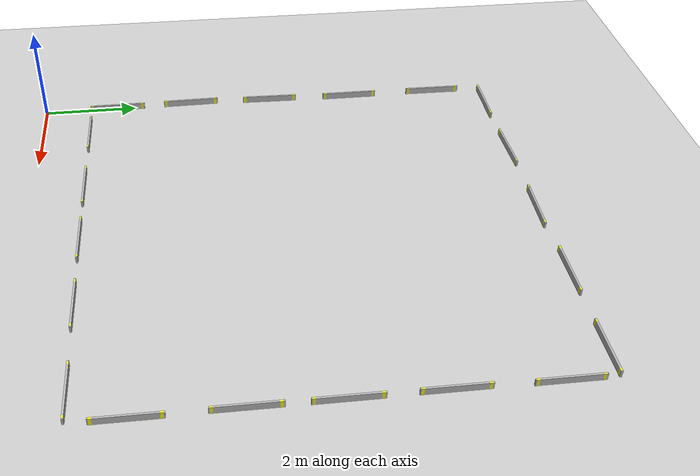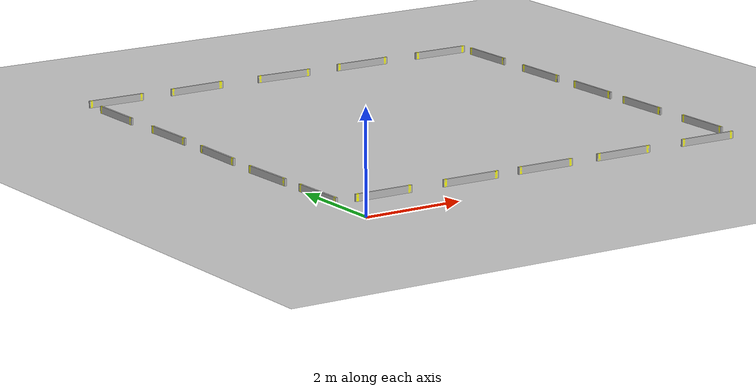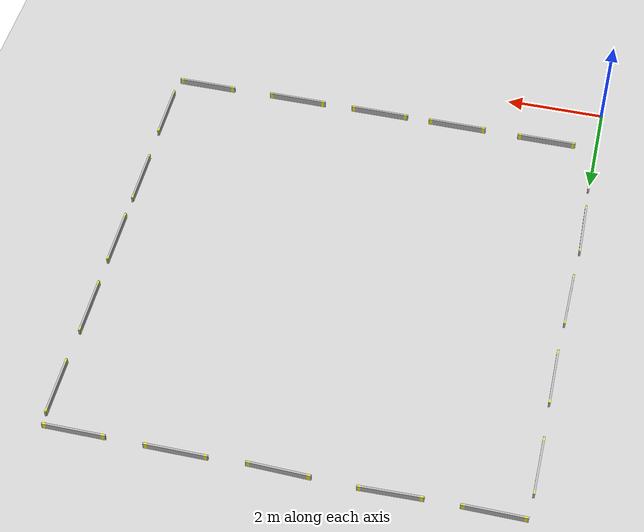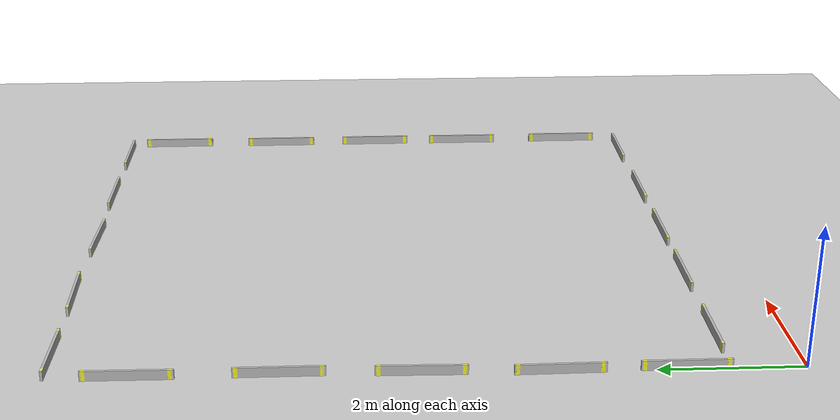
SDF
<sdf version="1.6">
 <world name="default">
  <model name="ground_concrete">
   <static>1</static>
   <link name="link">
    <collision name="collision">
     <geometry><plane><normal>0 0 1</normal><size>100 100</size></plane></geometry>
     <surface><friction><ode><mu>100</mu><mu2>50</mu2></ode></friction></surface>
    </collision>
    <visual name="visual">
     <cast_shadows>0</cast_shadows>
     <geometry><plane><normal>0 0 1</normal><size>100 100</size></plane></geometry>
     <material>
      <script>
       <uri>model://ground_concrete/materials/scripts</uri>
       <uri>model://ground_concrete/materials/textures/</uri>
       <name>MyGroundPlane/Image</name>
      </script>
     </material>
    </visual>
   </link>
   <pose>-0.004927 0.020491 0 0 -0 0</pose>
  </model>
  <light name="sun" type="directional">
   <cast_shadows>0</cast_shadows>
   <pose>0 0 10 0 -0 0</pose>
   <diffuse>0.8 0.8 0.8 1</diffuse>
   <specular>0.2 0.2 0.2 1</specular>
   <attenuation>
    <range>1000</range>
    <constant>0.9</constant>
    <linear>0.01</linear>
    <quadratic>0.001</quadratic>
   </attenuation>
   <direction>-0.5 0.1 -0.9</direction>
  </light>
  <plugin name="ros_interface_plugin" filename="librotors_gazebo_ros_interface_plugin.so"/>
  <spherical_coordinates>
   <surface_model>EARTH_WGS84</surface_model>
   <latitude_deg>47.3667</latitude_deg>
   <longitude_deg>8.55</longitude_deg>
   <elevation>500</elevation>
   <heading_deg>0</heading_deg>
  </spherical_coordinates>
  <physics name="default_physics" default="0" type="ode">
   <ode>
    <solver>
     <type>quick</type>
     <iters>1000</iters>
     <sor>1.3</sor>
     <use_dynamic_moi_rescaling>0</use_dynamic_moi_rescaling>
    </solver>
    <constraints>
     <cfm>0</cfm>
     <erp>0.2</erp>
     <contact_max_correcting_vel>100</contact_max_correcting_vel>
     <contact_surface_layer>0.001</contact_surface_layer>
    </constraints>
   </ode>
   <max_step_size>0.01</max_step_size>
   <real_time_factor>1</real_time_factor>
   <real_time_update_rate>100</real_time_update_rate>
  </physics>
  <gravity>0 0 -9.8</gravity>
  <magnetic_field>6e-06 2.3e-05 -4.2e-05</magnetic_field>
  <atmosphere type="adiabatic"/>
  <scene><ambient>0 0 0 1</ambient><background>0.7 0.7 0.7 1</background><shadows>0</shadows></scene>
  <audio><device>default</device></audio>
  <light name="user_directional_light_1" type="directional">
   <pose>-3.34267 -3.00126 1 0 -0 0</pose>
   <diffuse>0.5 0.5 0.5 1</diffuse>
   <specular>0.1 0.1 0.1 1</specular>
   <direction>0.1 0.1 -0.9</direction>
   <attenuation>
    <range>20</range>
    <constant>0.5</constant>
    <linear>0.01</linear>
    <quadratic>0.001</quadratic>
   </attenuation>
   <cast_shadows>0</cast_shadows>
  </light>
  <model name="lumber_2x6x48">
   <link name="link">
    <inertial>
     <mass>2.22</mass>
     <inertia><ixx>0.0039</ixx><ixy>0</ixy><ixz>0</ixz><iyy>0.28</iyy><iyz>0</iyz><izz>0.2766</izz></inertia>
    </inertial>
    <collision name="collision">
     <geometry><box><size>1.2192 0.038 0.1396</size></box></geometry>
     <surface>
      <bounce><restitution_coefficient>0.01</restitution_coefficient><threshold>5</threshold></bounce>
      <friction><ode><mu>5</mu><mu2>5</mu2></ode></friction>
      <contact><ode><soft_cfm>0.01</soft_cfm><kp>10000</kp><kd>1000</kd><min_depth>0.001</min_depth></ode></contact>
     </surface>
    </collision>
    <visual name="visual">
     <geometry><mesh><uri>model://drc_practice_2x6/meshes/2x6x48.dae</uri></mesh></geometry>
    </visual>
   </link>
   <pose>0.667532 9.96837 0.068256 -0 -0 -0.00625</pose>
  </model>
  <model name="lumber_2x6x48_1">
   <link name="link">
    <inertial>
     <mass>2.22</mass>
     <inertia><ixx>0.0039</ixx><ixy>0</ixy><ixz>0</ixz><iyy>0.28</iyy><iyz>0</iyz><izz>0.2766</izz></inertia>
    </inertial>
    <collision name="collision">
     <geometry><box><size>1.2192 0.038 0.1396</size></box></geometry>
     <surface>
      <bounce><restitution_coefficient>0.01</restitution_coefficient><threshold>5</threshold></bounce>
      <friction><ode><mu>5</mu><mu2>5</mu2></ode></friction>
      <contact><ode><soft_cfm>0.01</soft_cfm><kp>10000</kp><kd>1000</kd><min_depth>0.001</min_depth></ode></contact>
     </surface>
    </collision>
    <visual name="visual">
     <geometry><mesh><uri>model://drc_practice_2x6/meshes/2x6x48.dae</uri></mesh></geometry>
    </visual>
   </link>
   <pose>2.52595 9.98912 0.068256 0 -0 0.028538</pose>
  </model>
  <model name="lumber_2x6x48_3">
   <link name="link">
    <inertial>
     <mass>2.22</mass>
     <inertia><ixx>0.0039</ixx><ixy>0</ixy><ixz>0</ixz><iyy>0.28</iyy><iyz>0</iyz><izz>0.2766</izz></inertia>
    </inertial>
    <collision name="collision">
     <geometry><box><size>1.2192 0.038 0.1396</size></box></geometry>
     <surface>
      <bounce><restitution_coefficient>0.01</restitution_coefficient><threshold>5</threshold></bounce>
      <friction><ode><mu>5</mu><mu2>5</mu2></ode></friction>
      <contact><ode><soft_cfm>0.01</soft_cfm><kp>10000</kp><kd>1000</kd><min_depth>0.001</min_depth></ode></contact>
     </surface>
    </collision>
    <visual name="visual">
     <geometry><mesh><uri>model://drc_practice_2x6/meshes/2x6x48.dae</uri></mesh></geometry>
    </visual>
   </link>
   <pose>4.56837 9.97197 0.068256 0 -0 -0.02724</pose>
  </model>
  <model name="lumber_2x6x48_5">
   <link name="link">
    <inertial>
     <mass>2.22</mass>
     <inertia><ixx>0.0039</ixx><ixy>0</ixy><ixz>0</ixz><iyy>0.28</iyy><iyz>0</iyz><izz>0.2766</izz></inertia>
    </inertial>
    <collision name="collision">
     <geometry><box><size>1.2192 0.038 0.1396</size></box></geometry>
     <surface>
      <bounce><restitution_coefficient>0.01</restitution_coefficient><threshold>5</threshold></bounce>
      <friction><ode><mu>5</mu><mu2>5</mu2></ode></friction>
      <contact><ode><soft_cfm>0.01</soft_cfm><kp>10000</kp><kd>1000</kd><min_depth>0.001</min_depth></ode></contact>
     </surface>
    </collision>
    <visual name="visual">
     <geometry><mesh><uri>model://drc_practice_2x6/meshes/2x6x48.dae</uri></mesh></geometry>
    </visual>
   </link>
   <pose>6.4695 9.99841 0.068256 0 -0 3e-05</pose>
  </model>
  <model name="lumber_2x6x48_6">
   <link name="link">
    <inertial>
     <mass>2.22</mass>
     <inertia><ixx>0.0039</ixx><ixy>0</ixy><ixz>0</ixz><iyy>0.28</iyy><iyz>0</iyz><izz>0.2766</izz></inertia>
    </inertial>
    <collision name="collision">
     <geometry><box><size>1.2192 0.038 0.1396</size></box></geometry>
     <surface>
      <bounce><restitution_coefficient>0.01</restitution_coefficient><threshold>5</threshold></bounce>
      <friction><ode><mu>5</mu><mu2>5</mu2></ode></friction>
      <contact><ode><soft_cfm>0.01</soft_cfm><kp>10000</kp><kd>1000</kd><min_depth>0.001</min_depth></ode></contact>
     </surface>
    </collision>
    <visual name="visual">
     <geometry><mesh><uri>model://drc_practice_2x6/meshes/2x6x48.dae</uri></mesh></geometry>
    </visual>
   </link>
   <pose>8.39539 9.9939 0.068256 0 -0 0</pose>
  </model>
  <model name="lumber_2x6x48_clone">
   <link name="link">
    <inertial>
     <mass>2.22</mass>
     <inertia><ixx>0.0039</ixx><ixy>0</ixy><ixz>0</ixz><iyy>0.28</iyy><iyz>0</iyz><izz>0.2766</izz></inertia>
    </inertial>
    <collision name="collision">
     <geometry><box><size>1.2192 0.038 0.1396</size></box></geometry>
     <surface>
      <bounce><restitution_coefficient>0.01</restitution_coefficient><threshold>5</threshold></bounce>
      <friction><ode><mu>5</mu><mu2>5</mu2></ode></friction>
      <contact><ode><soft_cfm>0.01</soft_cfm><kp>10000</kp><kd>1000</kd><min_depth>0.001</min_depth></ode></contact>
     </surface>
    </collision>
    <visual name="visual">
     <geometry><mesh><uri>model://drc_practice_2x6/meshes/2x6x48.dae</uri></mesh></geometry>
    </visual>
   </link>
   <pose>0.043867 8.87852 0.068256 0 -0 1.56439</pose>
  </model>
  <model name="lumber_2x6x48_clone_0">
   <link name="link">
    <inertial>
     <mass>2.22</mass>
     <inertia><ixx>0.0039</ixx><ixy>0</ixy><ixz>0</ixz><iyy>0.28</iyy><iyz>0</iyz><izz>0.2766</izz></inertia>
    </inertial>
    <collision name="collision">
     <geometry><box><size>1.2192 0.038 0.1396</size></box></geometry>
     <surface>
      <bounce><restitution_coefficient>0.01</restitution_coefficient><threshold>5</threshold></bounce>
      <friction><ode><mu>5</mu><mu2>5</mu2></ode></friction>
      <contact><ode><soft_cfm>0.01</soft_cfm><kp>10000</kp><kd>1000</kd><min_depth>0.001</min_depth></ode></contact>
     </surface>
    </collision>
    <visual name="visual">
     <geometry><mesh><uri>model://drc_practice_2x6/meshes/2x6x48.dae</uri></mesh></geometry>
    </visual>
   </link>
   <pose>0.054395 6.92134 0.068256 0 0 -1.56604</pose>
  </model>
  <model name="lumber_2x6x48_clone_1">
   <link name="link">
    <inertial>
     <mass>2.22</mass>
     <inertia><ixx>0.0039</ixx><ixy>0</ixy><ixz>0</ixz><iyy>0.28</iyy><iyz>0</iyz><izz>0.2766</izz></inertia>
    </inertial>
    <collision name="collision">
     <geometry><box><size>1.2192 0.038 0.1396</size></box></geometry>
     <surface>
      <bounce><restitution_coefficient>0.01</restitution_coefficient><threshold>5</threshold></bounce>
      <friction><ode><mu>5</mu><mu2>5</mu2></ode></friction>
      <contact><ode><soft_cfm>0.01</soft_cfm><kp>10000</kp><kd>1000</kd><min_depth>0.001</min_depth></ode></contact>
     </surface>
    </collision>
    <visual name="visual">
     <geometry><mesh><uri>model://drc_practice_2x6/meshes/2x6x48.dae</uri></mesh></geometry>
    </visual>
   </link>
   <pose>0.017219 5.07195 0.068256 -0 -0 -1.589</pose>
  </model>
  <model name="lumber_2x6x48_clone_2">
   <link name="link">
    <inertial>
     <mass>2.22</mass>
     <inertia><ixx>0.0039</ixx><ixy>0</ixy><ixz>0</ixz><iyy>0.28</iyy><iyz>0</iyz><izz>0.2766</izz></inertia>
    </inertial>
    <collision name="collision">
     <geometry><box><size>1.2192 0.038 0.1396</size></box></geometry>
     <surface>
      <bounce><restitution_coefficient>0.01</restitution_coefficient><threshold>5</threshold></bounce>
      <friction><ode><mu>5</mu><mu2>5</mu2></ode></friction>
      <contact><ode><soft_cfm>0.01</soft_cfm><kp>10000</kp><kd>1000</kd><min_depth>0.001</min_depth></ode></contact>
     </surface>
    </collision>
    <visual name="visual">
     <geometry><mesh><uri>model://drc_practice_2x6/meshes/2x6x48.dae</uri></mesh></geometry>
    </visual>
   </link>
   <pose>-0.018172 3.26447 0.068256 -0 -0 -1.55214</pose>
  </model>
  <model name="lumber_2x6x48_clone_3">
   <link name="link">
    <inertial>
     <mass>2.22</mass>
     <inertia><ixx>0.0039</ixx><ixy>0</ixy><ixz>0</ixz><iyy>0.28</iyy><iyz>0</iyz><izz>0.2766</izz></inertia>
    </inertial>
    <collision name="collision">
     <geometry><box><size>1.2192 0.038 0.1396</size></box></geometry>
     <surface>
      <bounce><restitution_coefficient>0.01</restitution_coefficient><threshold>5</threshold></bounce>
      <friction><ode><mu>5</mu><mu2>5</mu2></ode></friction>
      <contact><ode><soft_cfm>0.01</soft_cfm><kp>10000</kp><kd>1000</kd><min_depth>0.001</min_depth></ode></contact>
     </surface>
    </collision>
    <visual name="visual">
     <geometry><mesh><uri>model://drc_practice_2x6/meshes/2x6x48.dae</uri></mesh></geometry>
    </visual>
   </link>
   <pose>0.01512 1.59813 0.068256 0 0 -1.56334</pose>
  </model>
  <model name="lumber_2x6x48_clone_4">
   <link name="link">
    <inertial>
     <mass>2.22</mass>
     <inertia><ixx>0.0039</ixx><ixy>0</ixy><ixz>0</ixz><iyy>0.28</iyy><iyz>0</iyz><izz>0.2766</izz></inertia>
    </inertial>
    <collision name="collision">
     <geometry><box><size>1.2192 0.038 0.1396</size></box></geometry>
     <surface>
      <bounce><restitution_coefficient>0.01</restitution_coefficient><threshold>5</threshold></bounce>
      <friction><ode><mu>5</mu><mu2>5</mu2></ode></friction>
      <contact><ode><soft_cfm>0.01</soft_cfm><kp>10000</kp><kd>1000</kd><min_depth>0.001</min_depth></ode></contact>
     </surface>
    </collision>
    <visual name="visual">
     <geometry><mesh><uri>model://drc_practice_2x6/meshes/2x6x48.dae</uri></mesh></geometry>
    </visual>
   </link>
   <pose>1.04039 1.01812 0.068256 0 0 -0.00625</pose>
  </model>
  <model name="lumber_2x6x48_clone_5">
   <link name="link">
    <inertial>
     <mass>2.22</mass>
     <inertia><ixx>0.0039</ixx><ixy>0</ixy><ixz>0</ixz><iyy>0.28</iyy><iyz>0</iyz><izz>0.2766</izz></inertia>
    </inertial>
    <collision name="collision">
     <geometry><box><size>1.2192 0.038 0.1396</size></box></geometry>
     <surface>
      <bounce><restitution_coefficient>0.01</restitution_coefficient><threshold>5</threshold></bounce>
      <friction><ode><mu>5</mu><mu2>5</mu2></ode></friction>
      <contact><ode><soft_cfm>0.01</soft_cfm><kp>10000</kp><kd>1000</kd><min_depth>0.001</min_depth></ode></contact>
     </surface>
    </collision>
    <visual name="visual">
     <geometry><mesh><uri>model://drc_practice_2x6/meshes/2x6x48.dae</uri></mesh></geometry>
    </visual>
   </link>
   <pose>2.94083 1.0029 0.068256 0 0 -0.00625</pose>
  </model>
  <model name="lumber_2x6x48_clone_6">
   <link name="link">
    <inertial>
     <mass>2.22</mass>
     <inertia><ixx>0.0039</ixx><ixy>0</ixy><ixz>0</ixz><iyy>0.28</iyy><iyz>0</iyz><izz>0.2766</izz></inertia>
    </inertial>
    <collision name="collision">
     <geometry><box><size>1.2192 0.038 0.1396</size></box></geometry>
     <surface>
      <bounce><restitution_coefficient>0.01</restitution_coefficient><threshold>5</threshold></bounce>
      <friction><ode><mu>5</mu><mu2>5</mu2></ode></friction>
      <contact><ode><soft_cfm>0.01</soft_cfm><kp>10000</kp><kd>1000</kd><min_depth>0.001</min_depth></ode></contact>
     </surface>
    </collision>
    <visual name="visual">
     <geometry><mesh><uri>model://drc_practice_2x6/meshes/2x6x48.dae</uri></mesh></geometry>
    </visual>
   </link>
   <pose>4.61298 0.995768 0.068256 0 0 -0.00625</pose>
  </model>
  <model name="lumber_2x6x48_clone_7">
   <link name="link">
    <inertial>
     <mass>2.22</mass>
     <inertia><ixx>0.0039</ixx><ixy>0</ixy><ixz>0</ixz><iyy>0.28</iyy><iyz>0</iyz><izz>0.2766</izz></inertia>
    </inertial>
    <collision name="collision">
     <geometry><box><size>1.2192 0.038 0.1396</size></box></geometry>
     <surface>
      <bounce><restitution_coefficient>0.01</restitution_coefficient><threshold>5</threshold></bounce>
      <friction><ode><mu>5</mu><mu2>5</mu2></ode></friction>
      <contact><ode><soft_cfm>0.01</soft_cfm><kp>10000</kp><kd>1000</kd><min_depth>0.001</min_depth></ode></contact>
     </surface>
    </collision>
    <visual name="visual">
     <geometry><mesh><uri>model://drc_practice_2x6/meshes/2x6x48.dae</uri></mesh></geometry>
    </visual>
   </link>
   <pose>6.40672 0.999007 0.068256 -0 -0 -0.00625</pose>
  </model>
  <model name="lumber_2x6x48_clone_8">
   <link name="link">
    <inertial>
     <mass>2.22</mass>
     <inertia><ixx>0.0039</ixx><ixy>0</ixy><ixz>0</ixz><iyy>0.28</iyy><iyz>0</iyz><izz>0.2766</izz></inertia>
    </inertial>
    <collision name="collision">
     <geometry><box><size>1.2192 0.038 0.1396</size></box></geometry>
     <surface>
      <bounce><restitution_coefficient>0.01</restitution_coefficient><threshold>5</threshold></bounce>
      <friction><ode><mu>5</mu><mu2>5</mu2></ode></friction>
      <contact><ode><soft_cfm>0.01</soft_cfm><kp>10000</kp><kd>1000</kd><min_depth>0.001</min_depth></ode></contact>
     </surface>
    </collision>
    <visual name="visual">
     <geometry><mesh><uri>model://drc_practice_2x6/meshes/2x6x48.dae</uri></mesh></geometry>
    </visual>
   </link>
   <pose>8.40099 1.00925 0.068256 0 0 -0.00625</pose>
  </model>
  <model name="lumber_2x6x48_clone_0_clone">
   <link name="link">
    <inertial>
     <mass>2.22</mass>
     <inertia><ixx>0.0039</ixx><ixy>0</ixy><ixz>0</ixz><iyy>0.28</iyy><iyz>0</iyz><izz>0.2766</izz></inertia>
    </inertial>
    <collision name="collision">
     <geometry><box><size>1.2192 0.038 0.1396</size></box></geometry>
     <surface>
      <bounce><restitution_coefficient>0.01</restitution_coefficient><threshold>5</threshold></bounce>
      <friction><ode><mu>5</mu><mu2>5</mu2></ode></friction>
      <contact><ode><soft_cfm>0.01</soft_cfm><kp>10000</kp><kd>1000</kd><min_depth>0.001</min_depth></ode></contact>
     </surface>
    </collision>
    <visual name="visual">
     <geometry><mesh><uri>model://drc_practice_2x6/meshes/2x6x48.dae</uri></mesh></geometry>
    </visual>
   </link>
   <pose>9.01715 9.15084 0.068256 -0 -0 -1.56604</pose>
  </model>
  <model name="lumber_2x6x48_clone_0_clone_0">
   <link name="link">
    <inertial>
     <mass>2.22</mass>
     <inertia><ixx>0.0039</ixx><ixy>0</ixy><ixz>0</ixz><iyy>0.28</iyy><iyz>0</iyz><izz>0.2766</izz></inertia>
    </inertial>
    <collision name="collision">
     <geometry><box><size>1.2192 0.038 0.1396</size></box></geometry>
     <surface>
      <bounce><restitution_coefficient>0.01</restitution_coefficient><threshold>5</threshold></bounce>
      <friction><ode><mu>5</mu><mu2>5</mu2></ode></friction>
      <contact><ode><soft_cfm>0.01</soft_cfm><kp>10000</kp><kd>1000</kd><min_depth>0.001</min_depth></ode></contact>
     </surface>
    </collision>
    <visual name="visual">
     <geometry><mesh><uri>model://drc_practice_2x6/meshes/2x6x48.dae</uri></mesh></geometry>
    </visual>
   </link>
   <pose>9.00408 7.26056 0.068256 0 0 -1.56604</pose>
  </model>
  <model name="lumber_2x6x48_clone_0_clone_1">
   <link name="link">
    <inertial>
     <mass>2.22</mass>
     <inertia><ixx>0.0039</ixx><ixy>0</ixy><ixz>0</ixz><iyy>0.28</iyy><iyz>0</iyz><izz>0.2766</izz></inertia>
    </inertial>
    <collision name="collision">
     <geometry><box><size>1.2192 0.038 0.1396</size></box></geometry>
     <surface>
      <bounce><restitution_coefficient>0.01</restitution_coefficient><threshold>5</threshold></bounce>
      <friction><ode><mu>5</mu><mu2>5</mu2></ode></friction>
      <contact><ode><soft_cfm>0.01</soft_cfm><kp>10000</kp><kd>1000</kd><min_depth>0.001</min_depth></ode></contact>
     </surface>
    </collision>
    <visual name="visual">
     <geometry><mesh><uri>model://drc_practice_2x6/meshes/2x6x48.dae</uri></mesh></geometry>
    </visual>
   </link>
   <pose>9.0147 5.50499 0.068256 0 0 -1.56604</pose>
  </model>
  <model name="lumber_2x6x48_clone_0_clone_2">
   <link name="link">
    <inertial>
     <mass>2.22</mass>
     <inertia><ixx>0.0039</ixx><ixy>0</ixy><ixz>0</ixz><iyy>0.28</iyy><iyz>0</iyz><izz>0.2766</izz></inertia>
    </inertial>
    <collision name="collision">
     <geometry><box><size>1.2192 0.038 0.1396</size></box></geometry>
     <surface>
      <bounce><restitution_coefficient>0.01</restitution_coefficient><threshold>5</threshold></bounce>
      <friction><ode><mu>5</mu><mu2>5</mu2></ode></friction>
      <contact><ode><soft_cfm>0.01</soft_cfm><kp>10000</kp><kd>1000</kd><min_depth>0.001</min_depth></ode></contact>
     </surface>
    </collision>
    <visual name="visual">
     <geometry><mesh><uri>model://drc_practice_2x6/meshes/2x6x48.dae</uri></mesh></geometry>
    </visual>
   </link>
   <pose>9.01634 3.8738 0.068256 0 0 -1.56604</pose>
  </model>
  <model name="lumber_2x6x48_clone_0_clone_3">
   <link name="link">
    <inertial>
     <mass>2.22</mass>
     <inertia><ixx>0.0039</ixx><ixy>0</ixy><ixz>0</ixz><iyy>0.28</iyy><iyz>0</iyz><izz>0.2766</izz></inertia>
    </inertial>
    <collision name="collision">
     <geometry><box><size>1.2192 0.038 0.1396</size></box></geometry>
     <surface>
      <bounce><restitution_coefficient>0.01</restitution_coefficient><threshold>5</threshold></bounce>
      <friction><ode><mu>5</mu><mu2>5</mu2></ode></friction>
      <contact><ode><soft_cfm>0.01</soft_cfm><kp>10000</kp><kd>1000</kd><min_depth>0.001</min_depth></ode></contact>
     </surface>
    </collision>
    <visual name="visual">
     <geometry><mesh><uri>model://drc_practice_2x6/meshes/2x6x48.dae</uri></mesh></geometry>
    </visual>
   </link>
   <pose>9.03743 1.98755 0.068256 0 -0 -1.56604</pose>
  </model>
 </world>
</sdf>
